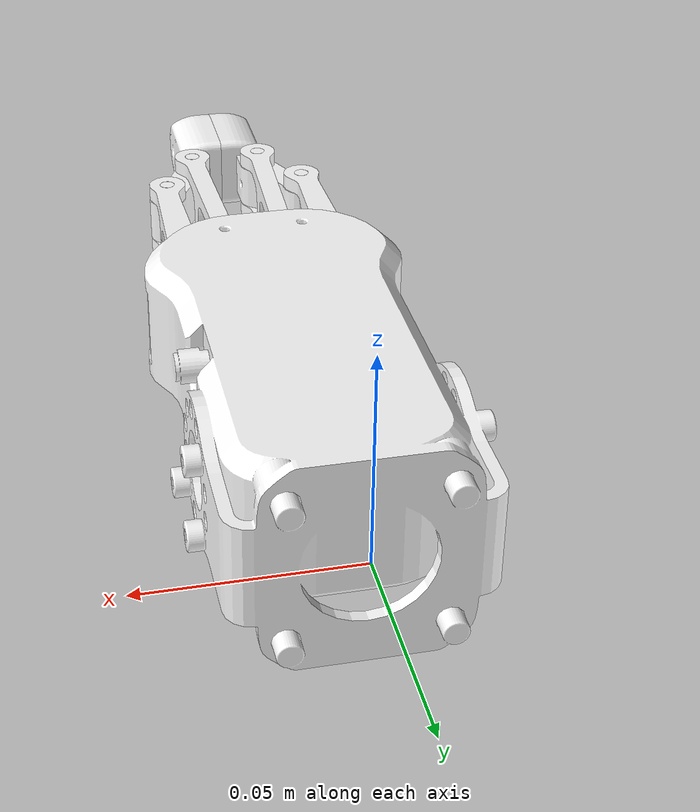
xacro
<?xml version="1.0"?>
<robot name="onrobot_rg2_visual" xmlns:xacro="http://wiki.ros.org/xacro">

  <gazebo>
    <plugin name="ros_control" filename="libgazebo_ros_control.so">
      <robotNamespace>/</robotNamespace>
    </plugin>
  </gazebo>

  <!-- rg2 -->
  <xacro:include filename="$(find onrobot_rg2_description)/urdf/onrobot_rg2_gripper.urdf.xacro" />

  <link name="world" />

  <joint name="world_joint" type="fixed">
    <parent link="world" />
    <child link = "gripper_root_link" />
    <origin xyz="0 0 0" rpy="0 0 0" />
  </joint>

  <link name="gripper_root_link" />

  <xacro:onrobot_rg2_gripper prefix="" parent="gripper_root_link">
    <origin xyz="0 0 0" rpy="${pi/2} 0 0"/>
  </xacro:onrobot_rg2_gripper>
</robot>

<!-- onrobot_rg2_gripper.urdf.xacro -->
<robot name="onrobot_rg2_gripper" xmlns:xacro="http://wiki.ros.org/xacro">

  <xacro:include filename="$(find onrobot_rg2_description)/urdf/onrobot_rg2_gripper.transmission.xacro" />

  <xacro:macro name="onrobot_rg2_gripper" params="prefix parent *origin">

    <joint name="${prefix}gripper_base_joint" type="fixed">
      <parent link="${parent}"/>
      <child link="${prefix}gripper_base_link"/>
      <xacro:insert_block name="origin"/>
    </joint>

    <link name="${prefix}gripper_base_link">
      <inertial>
        <origin xyz="-0.000118835633453291 4.70054905894546E-06 0.0572680906518555" rpy="0 0 0" />
        <mass value="0.199035856566616" />
        <inertia ixx="0.000170600248402307" ixy="3.75673847481297E-08" ixz="4.71579777629836E-08" iyy="0.000213152093040191" iyz="-1.76513863534777E-07" izz="5.59878626220752E-05" />
      </inertial>
      <visual>
        <origin xyz="0 0 0" rpy="0 0 0" />
        <geometry>
          <mesh filename="package://onrobot_rg2_description/meshes/visual/gripper_base_link.dae" />
        </geometry>
        <material name="White">
          <color rgba="1 1 1 1" />
        </material>
      </visual>
      <collision>
        <origin xyz="0 0 0" rpy="0 0 0" />
        <geometry>
          <mesh filename="package://onrobot_rg2_description/meshes/collision/gripper_base_link.STL" />
        </geometry>
      </collision>
    </link>

    <gazebo reference="${prefix}gripper_base_link">
      <implicitSpringDamper>1</implicitSpringDamper>
      <mu1>100000</mu1>
      <mu2>100000</mu2>
      <kp>100000000.0</kp>
      <kd>1.0</kd>
    </gazebo>

    <link name="${prefix}gripper_finger1_finger_link">
      <inertial>
        <origin xyz="0.0010718088996676 0.0103000002725817 0.00719447424225184" rpy="0 0 0" />
        <mass value="0.0157597232324457" />
        <inertia ixx="4.77930907548385E-06" ixy="-3.38189802725612E-15" ixz="-1.64279014982784E-07" iyy="4.865441590744E-06" iyz="-1.3392990014795E-14" izz="1.31307089078094E-06" />
      </inertial>
      <visual>
        <origin xyz="0 0 0" rpy="0 0 0" />
        <geometry>
          <mesh filename="package://onrobot_rg2_description/meshes/visual/gripper_finger1_finger_link.dae" />
        </geometry>
        <material name="White">
          <color rgba="1 1 1 1" />
        </material>
      </visual>
      <collision>
        <origin xyz="0 0 0" rpy="0 0 0" />
        <geometry>
          <mesh filename="package://onrobot_rg2_description/meshes/collision/gripper_finger1_finger_link.STL" />
        </geometry>
      </collision>
    </link>

    <gazebo reference="${prefix}gripper_finger1_finger_link">
      <implicitSpringDamper>1</implicitSpringDamper>
      <mu1>100000</mu1>
      <mu2>100000</mu2>
      <kp>100000000.0</kp>
      <kd>1.0</kd>
    </gazebo>

    <joint name="${prefix}gripper_finger1_joint" type="revolute">
      <origin xyz="0.0169 -0.0103 0.105" rpy="0 0 0" />
      <parent link="${prefix}gripper_base_link" />
      <child link="${prefix}gripper_finger1_finger_link" />
      <axis xyz="0 1 0" />
      <limit lower="0" upper="0.8" effort="1000" velocity="2" />
    </joint>

    <link name="${prefix}gripper_finger1_inner_knuckle_link">
      <inertial>
        <origin xyz="0.000752725541911719 0.00999999924320924 0.0203934641019564" rpy="0 0 0" />
        <mass value="0.00491742236496327" />
        <inertia ixx="1.98120134788244E-06" ixy="-6.4357476071842E-14" ixz="-6.20941625040096E-08" iyy="1.77599017859716E-06" iyz="-1.09055934131207E-14" izz="2.48948112270257E-07" />
      </inertial>
      <visual>
        <origin xyz="0 0 0" rpy="0 0 0" />
        <geometry>
          <mesh filename="package://onrobot_rg2_description/meshes/visual/gripper_finger1_inner_knuckle_link.dae" />
        </geometry>
        <material name="White">
          <color rgba="1 1 1 1" />
        </material>
      </visual>
      <collision>
        <origin xyz="0 0 0" rpy="0 0 0" />
        <geometry>
          <mesh filename="package://onrobot_rg2_description/meshes/collision/gripper_finger1_inner_knuckle_link.STL" />
        </geometry>
      </collision>
    </link>

    <gazebo reference="${prefix}gripper_finger1_inner_knuckle_link">
      <implicitSpringDamper>1</implicitSpringDamper>
      <mu1>100000</mu1>
      <mu2>100000</mu2>
      <kp>100000000.0</kp>
      <kd>1.0</kd>
    </gazebo>

    <joint name="${prefix}gripper_finger1_inner_knuckle_joint" type="continuous">
      <origin xyz="0.0074 -0.01 0.1215" rpy="0 0 0" />
      <parent link="${prefix}gripper_base_link" />
      <child link="${prefix}gripper_finger1_inner_knuckle_link" />
      <axis xyz="0 1 0" />
      <limit lower="-3.14" upper="3.14" effort="0.1" velocity="100" />
      <mimic joint="${prefix}gripper_finger1_joint" offset="0"/>
    </joint>

    <link name="${prefix}gripper_finger1_finger_tip_link">
      <inertial>
        <origin xyz="-0.0011594416667826 0.00580000072518588 0.0107764194581964" rpy="0 0 0" />
        <mass value="0.00872849065417813" />
        <inertia ixx="1.50886455139492E-06" ixy="-1.78552626714452E-14" ixz="2.60234059895028E-07" iyy="1.45214737233688E-06" iyz="9.35094538565976E-14" izz="3.57695503495602E-07" />
      </inertial>
      <visual>
        <origin xyz="0 0 0" rpy="0 0 0" />
        <geometry>
          <mesh filename="package://onrobot_rg2_description/meshes/visual/gripper_finger1_finger_tip_link.dae" />
        </geometry>
        <material name="White">
          <color rgba="1 1 1 1" />
        </material>
      </visual>
      <collision>
        <origin xyz="0 0 0" rpy="0 0 0" />
        <geometry>
          <mesh filename="package://onrobot_rg2_description/meshes/collision/gripper_finger1_finger_tip_link.STL" />
        </geometry>
      </collision>
    </link>

    <gazebo reference="${prefix}gripper_finger1_finger_tip_link">
      <implicitSpringDamper>1</implicitSpringDamper>
      <mu1>100000</mu1>
      <mu2>100000</mu2>
      <kp>100000000.0</kp>
      <kd>1.0</kd>
    </gazebo>

    <joint name="${prefix}gripper_finger1_finger_tip_joint" type="continuous">
      <origin xyz="0.002 0.0042 0.054964" rpy="0 0 0" />
      <parent link="${prefix}gripper_finger1_inner_knuckle_link" />
      <child link="${prefix}gripper_finger1_finger_tip_link" />
      <axis xyz="0 1 0" />
      <limit lower="-3.14" upper="3.14" effort="0.1" velocity="100" />
      <mimic joint="${prefix}gripper_finger1_joint" multiplier="-1"/>
    </joint>

    <link name="${prefix}gripper_finger2_finger_link">
      <inertial>
        <origin xyz="-0.00107180889966652 0.0102999997274183 0.00719447424225199" rpy="0 0 0" />
        <mass value="0.0157597232324457" />
        <inertia ixx="4.7793090754839E-06" ixy="-3.38189802615458E-15" ixz="1.64279014982266E-07" iyy="4.865441590744E-06" iyz="1.33929898462312E-14" izz="1.31307089078089E-06" />
      </inertial>
      <visual>
        <origin xyz="0 0 0" rpy="0 0 0" />
        <geometry>
          <mesh filename="package://onrobot_rg2_description/meshes/visual/gripper_finger2_finger_link.dae" />
        </geometry>
        <material name="White">
          <color rgba="1 1 1 1" />
        </material>
      </visual>
      <collision>
        <origin xyz="0 0 0" rpy="0 0 0" />
        <geometry>
          <mesh filename="package://onrobot_rg2_description/meshes/collision/gripper_finger2_finger_link.STL" />
        </geometry>
      </collision>
    </link>

    <gazebo reference="${prefix}gripper_finger2_finger_link">
      <implicitSpringDamper>1</implicitSpringDamper>
      <mu1>100000</mu1>
      <mu2>100000</mu2>
      <kp>100000000.0</kp>
      <kd>1.0</kd>
    </gazebo>

    <joint name="${prefix}gripper_finger2_joint" type="revolute">
      <origin xyz="-0.0171 -0.0103 0.105" rpy="0 0 0" />
      <parent link="${prefix}gripper_base_link" />
      <child link="${prefix}gripper_finger2_finger_link" />
      <axis xyz="0 1 0" />
      <limit lower="-3.14" upper="3.14" effort="1000" velocity="100" />
      <mimic joint="${prefix}gripper_finger1_joint" multiplier="-1"/>
    </joint>

    <link name="${prefix}gripper_finger2_inner_knuckle_link">
      <inertial>
        <origin xyz="-0.000752725541908486 0.0100000007567908 0.0203934641019566" rpy="0 0 0" />
        <mass value="0.00491742236496327" />
        <inertia ixx="1.98120134788246E-06" ixy="-6.43574760392122E-14" ixz="6.20941625037353E-08" iyy="1.77599017859716E-06" iyz="1.09055934323118E-14" izz="2.48948112270238E-07" />
      </inertial>
      <visual>
        <origin xyz="0 0 0" rpy="0 0 0" />
        <geometry>
          <mesh filename="package://onrobot_rg2_description/meshes/visual/gripper_finger2_inner_knuckle_link.dae" />
        </geometry>
        <material name="White">
          <color rgba="1 1 1 1" />
        </material>
      </visual>
      <collision>
        <origin xyz="0 0 0" rpy="0 0 0" />
        <geometry>
          <mesh filename="package://onrobot_rg2_description/meshes/collision/gripper_finger2_inner_knuckle_link.STL" />
        </geometry>
      </collision>
    </link>

    <gazebo reference="${prefix}gripper_finger2_inner_knuckle_link">
      <implicitSpringDamper>1</implicitSpringDamper>
      <mu1>100000</mu1>
      <mu2>100000</mu2>
      <kp>100000000.0</kp>
      <kd>1.0</kd>
    </gazebo>

    <joint name="${prefix}gripper_finger2_inner_knuckle_joint" type="continuous">
      <origin xyz="-0.0076 -0.01 0.1215" rpy="0 0 0" />
      <parent link="${prefix}gripper_base_link" />
      <child link="${prefix}gripper_finger2_inner_knuckle_link" />
      <axis xyz="0 1 0" />
      <limit lower="-3.14" upper="3.14" effort="0.1" velocity="100" />
      <mimic joint="${prefix}gripper_finger1_joint" multiplier="-1"/>
    </joint>

    <link name="${prefix}gripper_finger2_finger_tip_link">
      <inertial>
        <origin xyz="0.00115944166678269 0.00579999927481416 0.0107764194581964" rpy="0 0 0" />
        <mass value="0.00872849065417814" />
        <inertia ixx="1.50886455139492E-06" ixy="-1.78552622842378E-14" ixz="-2.60234059895028E-07" iyy="1.45214737233688E-06" iyz="-9.3509454025756E-14" izz="3.57695503495603E-07" />
      </inertial>
      <visual>
        <origin xyz="0 0 0" rpy="0 0 0" />
        <geometry>
          <mesh filename="package://onrobot_rg2_description/meshes/visual/gripper_finger2_finger_tip_link.dae" />
        </geometry>
        <material name="White">
          <color rgba="1 1 1 1" />
        </material>
      </visual>
      <collision>
        <origin xyz="0 0 0" rpy="0 0 0" />
        <geometry>
          <mesh filename="package://onrobot_rg2_description/meshes/collision/gripper_finger2_finger_tip_link.STL" />
        </geometry>
      </collision>
    </link>

    <gazebo reference="${prefix}gripper_finger2_finger_tip_link">
      <implicitSpringDamper>1</implicitSpringDamper>
      <mu1>100000</mu1>
      <mu2>100000</mu2>
      <kp>100000000.0</kp>
      <kd>1.0</kd>
    </gazebo>

    <joint name="${prefix}gripper_finger2_finger_tip_joint" type="continuous">
      <origin xyz="-0.002 0.0042 0.054964" rpy="0 0 0" />
      <parent link="${prefix}gripper_finger2_inner_knuckle_link" />
      <child link="${prefix}gripper_finger2_finger_tip_link" />
      <axis xyz="0 1 0" />
      <limit lower="-3.14" upper="3.14" effort="0.1" velocity="100" />
      <mimic joint="${prefix}gripper_finger1_joint" offset="0"/>
    </joint>

    <gazebo>
	    <plugin name="gazebo_grasp_fix" filename="libgazebo_grasp_fix.so">
        <arm>
          <arm_name>gripper_arm</arm_name>
          <palm_link>${parent}</palm_link>
          <gripper_link>${prefix}gripper_finger1_finger_tip_link</gripper_link>
          <gripper_link>${prefix}gripper_finger2_finger_tip_link</gripper_link>
        </arm>
	      <forces_angle_tolerance>100</forces_angle_tolerance>
	      <update_rate>2</update_rate>
	      <grip_count_threshold>1</grip_count_threshold>
	      <max_grip_count>2</max_grip_count>
	      <release_tolerance>0.005</release_tolerance>
	      <disable_collisions_on_attach>true</disable_collisions_on_attach>
	      <contact_topic>__default_topic__</contact_topic>
	    </plugin>
	  </gazebo>

    <xacro:onrobot_rg2_gripper_transmission prefix="${prefix}" />

  </xacro:macro>
</robot>
